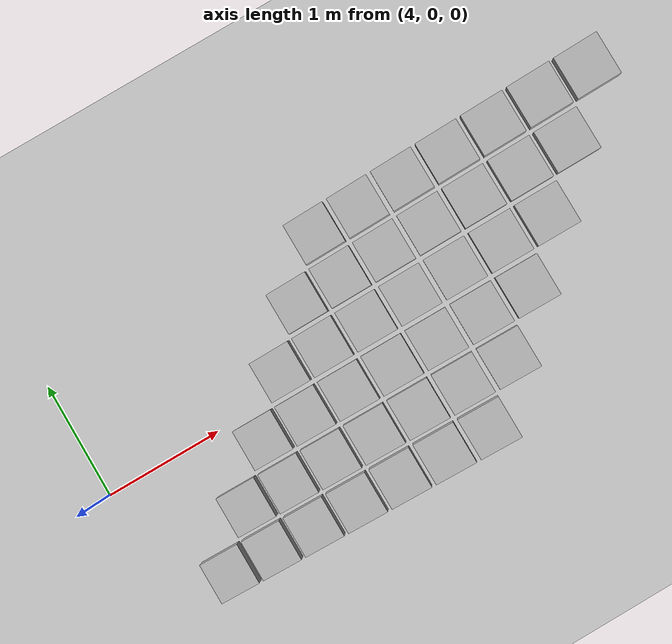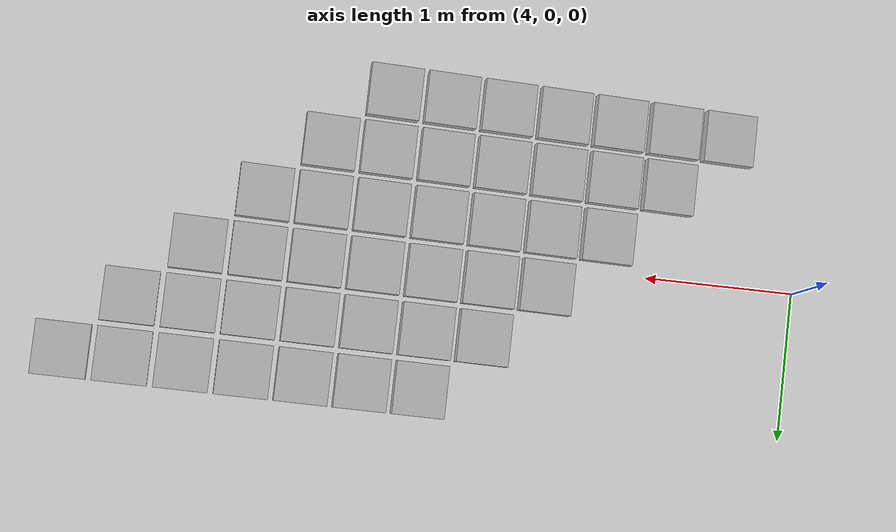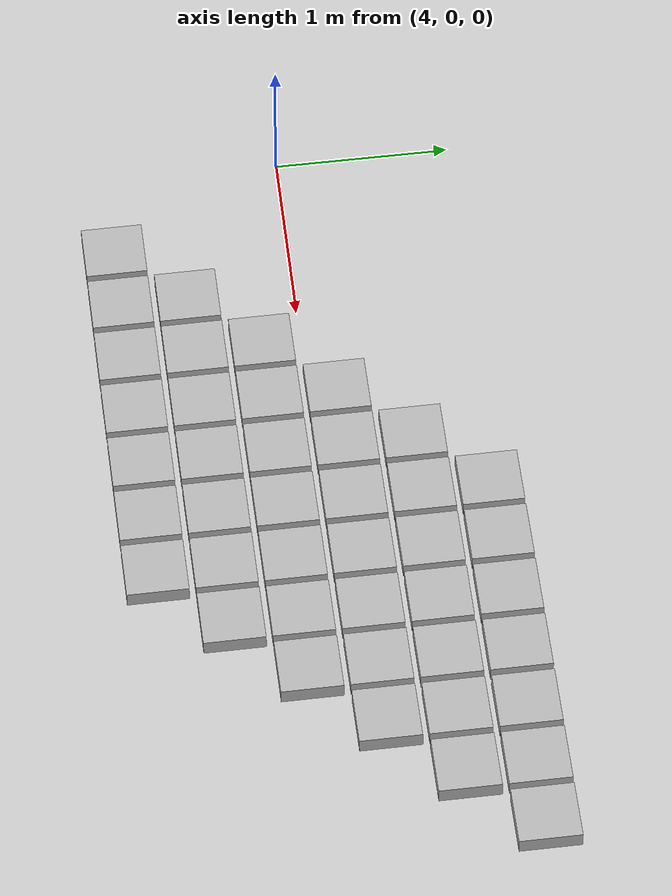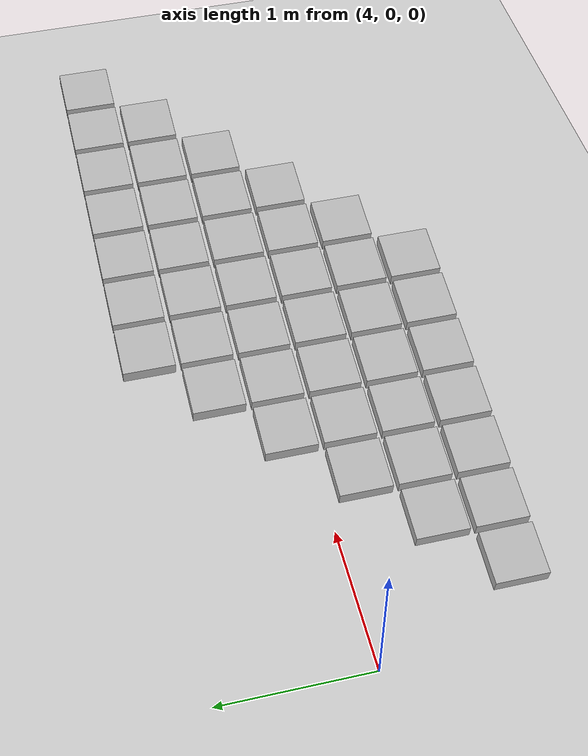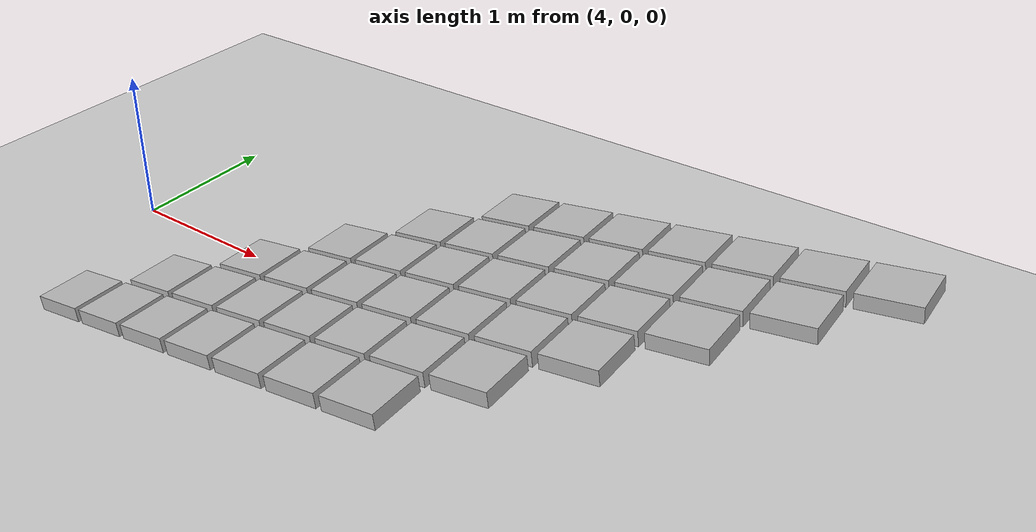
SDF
<sdf version="1.5">
 <world name="trials_task_2">
  <model name="ground_plane">
   <static>1</static>
   <link name="link">
    <collision name="collision">
     <geometry><plane><normal>0 0 1</normal><size>100 100</size></plane></geometry>
     <surface><friction><ode><mu>100</mu><mu2>50</mu2></ode></friction></surface>
    </collision>
    <visual name="visual">
     <cast_shadows>0</cast_shadows>
     <geometry><plane><normal>0 0 1</normal><size>100 100</size></plane></geometry>
     <material>
      <script><uri>file://media/materials/scripts/gazebo.material</uri><name>Gazebo/Grey</name></script>
     </material>
    </visual>
    <velocity_decay><linear>0</linear><angular>0</angular></velocity_decay>
   </link>
  </model>
  <model name="block_cover">
   <pose>2.42937 -1.20093 -0.262679 -0.000259 -0.15805 0.000469</pose>
   <link name="block_0_0::link">
    <inertial>
     <pose>0 0 0.0714375 0 -0 0</pose>
     <mass>5</mass>
     <inertia>
      <ixx>0.0681466</ixx>
      <ixy>0</ixy>
      <iyy>0.0681466</iyy>
      <ixz>0</ixz>
      <iyz>0</iyz>
      <izz>0.124808</izz>
     </inertia>
    </inertial>
    <visual name="visual"><geometry><box><size>0.35 0.35 0.092075</size></box></geometry></visual>
    <collision name="block_collision">
     <geometry><box><size>0.35 0.35 0.092075</size></box></geometry>
     <surface>
      <contact><ode><max_vel>0.1</max_vel><min_depth>0.001</min_depth></ode></contact>
      <friction><ode><mu>1</mu><mu2>1</mu2></ode></friction>
     </surface>
    </collision>
    <velocity_decay><linear>0</linear><angular>0</angular></velocity_decay>
    <pose>2.13044 0.193677 0 0 -0 0</pose>
   </link>
   <link name="block_0_1::link">
    <inertial>
     <pose>0 0 0.0714375 0 -0 0</pose>
     <mass>5</mass>
     <inertia>
      <ixx>0.0681466</ixx>
      <ixy>0</ixy>
      <iyy>0.0681466</iyy>
      <ixz>0</ixz>
      <iyz>0</iyz>
      <izz>0.124808</izz>
     </inertia>
    </inertial>
    <visual name="visual"><geometry><box><size>0.35 0.35 0.092075</size></box></geometry></visual>
    <collision name="block_collision">
     <geometry><box><size>0.35 0.35 0.092075</size></box></geometry>
     <surface>
      <contact><ode><max_vel>0.1</max_vel><min_depth>0.001</min_depth></ode></contact>
      <friction><ode><mu>1</mu><mu2>1</mu2></ode></friction>
     </surface>
    </collision>
    <velocity_decay><linear>0</linear><angular>0</angular></velocity_decay>
    <pose>2.5178 0.58103 0 0 -0 0</pose>
   </link>
   <link name="block_0_2::link">
    <inertial>
     <pose>0 0 0.0714375 0 -0 0</pose>
     <mass>5</mass>
     <inertia>
      <ixx>0.0681466</ixx>
      <ixy>0</ixy>
      <iyy>0.0681466</iyy>
      <ixz>0</ixz>
      <iyz>0</iyz>
      <izz>0.124808</izz>
     </inertia>
    </inertial>
    <visual name="visual"><geometry><box><size>0.35 0.35 0.092075</size></box></geometry></visual>
    <collision name="block_collision">
     <geometry><box><size>0.35 0.35 0.092075</size></box></geometry>
     <surface>
      <contact><ode><max_vel>0.1</max_vel><min_depth>0.001</min_depth></ode></contact>
      <friction><ode><mu>1</mu><mu2>1</mu2></ode></friction>
     </surface>
    </collision>
    <velocity_decay><linear>0</linear><angular>0</angular></velocity_decay>
    <pose>2.90515 0.968384 0 0 -0 0</pose>
   </link>
   <link name="block_0_3::link">
    <inertial>
     <pose>0 0 0.0714375 0 -0 0</pose>
     <mass>5</mass>
     <inertia>
      <ixx>0.0681466</ixx>
      <ixy>0</ixy>
      <iyy>0.0681466</iyy>
      <ixz>0</ixz>
      <iyz>0</iyz>
      <izz>0.124808</izz>
     </inertia>
    </inertial>
    <visual name="visual"><geometry><box><size>0.35 0.35 0.092075</size></box></geometry></visual>
    <collision name="block_collision">
     <geometry><box><size>0.35 0.35 0.092075</size></box></geometry>
     <surface>
      <contact><ode><max_vel>0.1</max_vel><min_depth>0.001</min_depth></ode></contact>
      <friction><ode><mu>1</mu><mu2>1</mu2></ode></friction>
     </surface>
    </collision>
    <velocity_decay><linear>0</linear><angular>0</angular></velocity_decay>
    <pose>3.29251 1.35574 0 0 -0 0</pose>
   </link>
   <link name="block_0_4::link">
    <inertial>
     <pose>0 0 0.0714375 0 -0 0</pose>
     <mass>5</mass>
     <inertia>
      <ixx>0.0681466</ixx>
      <ixy>0</ixy>
      <iyy>0.0681466</iyy>
      <ixz>0</ixz>
      <iyz>0</iyz>
      <izz>0.124808</izz>
     </inertia>
    </inertial>
    <visual name="visual"><geometry><box><size>0.35 0.35 0.092075</size></box></geometry></visual>
    <collision name="block_collision">
     <geometry><box><size>0.35 0.35 0.092075</size></box></geometry>
     <surface>
      <contact><ode><max_vel>0.1</max_vel><min_depth>0.001</min_depth></ode></contact>
      <friction><ode><mu>1</mu><mu2>1</mu2></ode></friction>
     </surface>
    </collision>
    <velocity_decay><linear>0</linear><angular>0</angular></velocity_decay>
    <pose>3.67986 1.74309 0 0 -0 0</pose>
   </link>
   <link name="block_0_5::link">
    <inertial>
     <pose>0 0 0.0714375 0 -0 0</pose>
     <mass>5</mass>
     <inertia>
      <ixx>0.0681466</ixx>
      <ixy>0</ixy>
      <iyy>0.0681466</iyy>
      <ixz>0</ixz>
      <iyz>0</iyz>
      <izz>0.124808</izz>
     </inertia>
    </inertial>
    <visual name="visual"><geometry><box><size>0.35 0.35 0.092075</size></box></geometry></visual>
    <collision name="block_collision">
     <geometry><box><size>0.35 0.35 0.092075</size></box></geometry>
     <surface>
      <contact><ode><max_vel>0.1</max_vel><min_depth>0.001</min_depth></ode></contact>
      <friction><ode><mu>1</mu><mu2>1</mu2></ode></friction>
     </surface>
    </collision>
    <velocity_decay><linear>0</linear><angular>0</angular></velocity_decay>
    <pose>4.06721 2.13044 0 0 -0 0</pose>
   </link>
   <link name="block_1_0::link">
    <inertial>
     <pose>0 0 0.0714375 0 -0 0</pose>
     <mass>5</mass>
     <inertia>
      <ixx>0.0681466</ixx>
      <ixy>0</ixy>
      <iyy>0.0681466</iyy>
      <ixz>0</ixz>
      <iyz>0</iyz>
      <izz>0.124808</izz>
     </inertia>
    </inertial>
    <visual name="visual"><geometry><box><size>0.35 0.35 0.092075</size></box></geometry></visual>
    <collision name="block_collision">
     <geometry><box><size>0.35 0.35 0.092075</size></box></geometry>
     <surface>
      <contact><ode><max_vel>0.1</max_vel><min_depth>0.001</min_depth></ode></contact>
      <friction><ode><mu>1</mu><mu2>1</mu2></ode></friction>
     </surface>
    </collision>
    <velocity_decay><linear>0</linear><angular>0</angular></velocity_decay>
    <pose>2.5178 0.193677 0 0 -0 0</pose>
   </link>
   <link name="block_1_1::link">
    <inertial>
     <pose>0 0 0.0714375 0 -0 0</pose>
     <mass>5</mass>
     <inertia>
      <ixx>0.0681466</ixx>
      <ixy>0</ixy>
      <iyy>0.0681466</iyy>
      <ixz>0</ixz>
      <iyz>0</iyz>
      <izz>0.124808</izz>
     </inertia>
    </inertial>
    <visual name="visual"><geometry><box><size>0.35 0.35 0.092075</size></box></geometry></visual>
    <collision name="block_collision">
     <geometry><box><size>0.35 0.35 0.092075</size></box></geometry>
     <surface>
      <contact><ode><max_vel>0.1</max_vel><min_depth>0.001</min_depth></ode></contact>
      <friction><ode><mu>1</mu><mu2>1</mu2></ode></friction>
     </surface>
    </collision>
    <velocity_decay><linear>0</linear><angular>0</angular></velocity_decay>
    <pose>2.90515 0.58103 0 0 -0 0</pose>
   </link>
   <link name="block_1_2::link">
    <inertial>
     <pose>0 0 0.0714375 0 -0 0</pose>
     <mass>5</mass>
     <inertia>
      <ixx>0.0681466</ixx>
      <ixy>0</ixy>
      <iyy>0.0681466</iyy>
      <ixz>0</ixz>
      <iyz>0</iyz>
      <izz>0.124808</izz>
     </inertia>
    </inertial>
    <visual name="visual"><geometry><box><size>0.35 0.35 0.092075</size></box></geometry></visual>
    <collision name="block_collision">
     <geometry><box><size>0.35 0.35 0.092075</size></box></geometry>
     <surface>
      <contact><ode><max_vel>0.1</max_vel><min_depth>0.001</min_depth></ode></contact>
      <friction><ode><mu>1</mu><mu2>1</mu2></ode></friction>
     </surface>
    </collision>
    <velocity_decay><linear>0</linear><angular>0</angular></velocity_decay>
    <pose>3.29251 0.968384 0 0 -0 0</pose>
   </link>
   <link name="block_1_3::link">
    <inertial>
     <pose>0 0 0.0714375 0 -0 0</pose>
     <mass>5</mass>
     <inertia>
      <ixx>0.0681466</ixx>
      <ixy>0</ixy>
      <iyy>0.0681466</iyy>
      <ixz>0</ixz>
      <iyz>0</iyz>
      <izz>0.124808</izz>
     </inertia>
    </inertial>
    <visual name="visual"><geometry><box><size>0.35 0.35 0.092075</size></box></geometry></visual>
    <collision name="block_collision">
     <geometry><box><size>0.35 0.35 0.092075</size></box></geometry>
     <surface>
      <contact><ode><max_vel>0.1</max_vel><min_depth>0.001</min_depth></ode></contact>
      <friction><ode><mu>1</mu><mu2>1</mu2></ode></friction>
     </surface>
    </collision>
    <velocity_decay><linear>0</linear><angular>0</angular></velocity_decay>
    <pose>3.67986 1.35574 0 0 -0 0</pose>
   </link>
   <link name="block_1_4::link">
    <inertial>
     <pose>0 0 0.0714375 0 -0 0</pose>
     <mass>5</mass>
     <inertia>
      <ixx>0.0681466</ixx>
      <ixy>0</ixy>
      <iyy>0.0681466</iyy>
      <ixz>0</ixz>
      <iyz>0</iyz>
      <izz>0.124808</izz>
     </inertia>
    </inertial>
    <visual name="visual"><geometry><box><size>0.35 0.35 0.092075</size></box></geometry></visual>
    <collision name="block_collision">
     <geometry><box><size>0.35 0.35 0.092075</size></box></geometry>
     <surface>
      <contact><ode><max_vel>0.1</max_vel><min_depth>0.001</min_depth></ode></contact>
      <friction><ode><mu>1</mu><mu2>1</mu2></ode></friction>
     </surface>
    </collision>
    <velocity_decay><linear>0</linear><angular>0</angular></velocity_decay>
    <pose>4.06721 1.74309 0 0 -0 0</pose>
   </link>
   <link name="block_1_5::link">
    <inertial>
     <pose>0 0 0.0714375 0 -0 0</pose>
     <mass>5</mass>
     <inertia>
      <ixx>0.0681466</ixx>
      <ixy>0</ixy>
      <iyy>0.0681466</iyy>
      <ixz>0</ixz>
      <iyz>0</iyz>
      <izz>0.124808</izz>
     </inertia>
    </inertial>
    <visual name="visual"><geometry><box><size>0.35 0.35 0.092075</size></box></geometry></visual>
    <collision name="block_collision">
     <geometry><box><size>0.35 0.35 0.092075</size></box></geometry>
     <surface>
      <contact><ode><max_vel>0.1</max_vel><min_depth>0.001</min_depth></ode></contact>
      <friction><ode><mu>1</mu><mu2>1</mu2></ode></friction>
     </surface>
    </collision>
    <velocity_decay><linear>0</linear><angular>0</angular></velocity_decay>
    <pose>4.45457 2.13044 0 0 -0 0</pose>
   </link>
   <link name="block_2_0::link">
    <inertial>
     <pose>0 0 0.0714375 0 -0 0</pose>
     <mass>5</mass>
     <inertia>
      <ixx>0.0681466</ixx>
      <ixy>0</ixy>
      <iyy>0.0681466</iyy>
      <ixz>0</ixz>
      <iyz>0</iyz>
      <izz>0.124808</izz>
     </inertia>
    </inertial>
    <visual name="visual"><geometry><box><size>0.35 0.35 0.092075</size></box></geometry></visual>
    <collision name="block_collision">
     <geometry><box><size>0.35 0.35 0.092075</size></box></geometry>
     <surface>
      <contact><ode><max_vel>0.1</max_vel><min_depth>0.001</min_depth></ode></contact>
      <friction><ode><mu>1</mu><mu2>1</mu2></ode></friction>
     </surface>
    </collision>
    <velocity_decay><linear>0</linear><angular>0</angular></velocity_decay>
    <pose>2.90515 0.193677 0 0 -0 0</pose>
   </link>
   <link name="block_2_1::link">
    <inertial>
     <pose>0 0 0.0714375 0 -0 0</pose>
     <mass>5</mass>
     <inertia>
      <ixx>0.0681466</ixx>
      <ixy>0</ixy>
      <iyy>0.0681466</iyy>
      <ixz>0</ixz>
      <iyz>0</iyz>
      <izz>0.124808</izz>
     </inertia>
    </inertial>
    <visual name="visual"><geometry><box><size>0.35 0.35 0.092075</size></box></geometry></visual>
    <collision name="block_collision">
     <geometry><box><size>0.35 0.35 0.092075</size></box></geometry>
     <surface>
      <contact><ode><max_vel>0.1</max_vel><min_depth>0.001</min_depth></ode></contact>
      <friction><ode><mu>1</mu><mu2>1</mu2></ode></friction>
     </surface>
    </collision>
    <velocity_decay><linear>0</linear><angular>0</angular></velocity_decay>
    <pose>3.29251 0.58103 0 0 -0 0</pose>
   </link>
   <link name="block_2_2::link">
    <inertial>
     <pose>0 0 0.0714375 0 -0 0</pose>
     <mass>5</mass>
     <inertia>
      <ixx>0.0681466</ixx>
      <ixy>0</ixy>
      <iyy>0.0681466</iyy>
      <ixz>0</ixz>
      <iyz>0</iyz>
      <izz>0.124808</izz>
     </inertia>
    </inertial>
    <visual name="visual"><geometry><box><size>0.35 0.35 0.092075</size></box></geometry></visual>
    <collision name="block_collision">
     <geometry><box><size>0.35 0.35 0.092075</size></box></geometry>
     <surface>
      <contact><ode><max_vel>0.1</max_vel><min_depth>0.001</min_depth></ode></contact>
      <friction><ode><mu>1</mu><mu2>1</mu2></ode></friction>
     </surface>
    </collision>
    <velocity_decay><linear>0</linear><angular>0</angular></velocity_decay>
    <pose>3.67986 0.968384 0 0 -0 0</pose>
   </link>
   <link name="block_2_3::link">
    <inertial>
     <pose>0 0 0.0714375 0 -0 0</pose>
     <mass>5</mass>
     <inertia>
      <ixx>0.0681466</ixx>
      <ixy>0</ixy>
      <iyy>0.0681466</iyy>
      <ixz>0</ixz>
      <iyz>0</iyz>
      <izz>0.124808</izz>
     </inertia>
    </inertial>
    <visual name="visual"><geometry><box><size>0.35 0.35 0.092075</size></box></geometry></visual>
    <collision name="block_collision">
     <geometry><box><size>0.35 0.35 0.092075</size></box></geometry>
     <surface>
      <contact><ode><max_vel>0.1</max_vel><min_depth>0.001</min_depth></ode></contact>
      <friction><ode><mu>1</mu><mu2>1</mu2></ode></friction>
     </surface>
    </collision>
    <velocity_decay><linear>0</linear><angular>0</angular></velocity_decay>
    <pose>4.06721 1.35574 0 0 -0 0</pose>
   </link>
   <link name="block_2_4::link">
    <inertial>
     <pose>0 0 0.0714375 0 -0 0</pose>
     <mass>5</mass>
     <inertia>
      <ixx>0.0681466</ixx>
      <ixy>0</ixy>
      <iyy>0.0681466</iyy>
      <ixz>0</ixz>
      <iyz>0</iyz>
      <izz>0.124808</izz>
     </inertia>
    </inertial>
    <visual name="visual"><geometry><box><size>0.35 0.35 0.092075</size></box></geometry></visual>
    <collision name="block_collision">
     <geometry><box><size>0.35 0.35 0.092075</size></box></geometry>
     <surface>
      <contact><ode><max_vel>0.1</max_vel><min_depth>0.001</min_depth></ode></contact>
      <friction><ode><mu>1</mu><mu2>1</mu2></ode></friction>
     </surface>
    </collision>
    <velocity_decay><linear>0</linear><angular>0</angular></velocity_decay>
    <pose>4.45457 1.74309 0 0 -0 0</pose>
   </link>
   <link name="block_2_5::link">
    <inertial>
     <pose>0 0 0.0714375 0 -0 0</pose>
     <mass>5</mass>
     <inertia>
      <ixx>0.0681466</ixx>
      <ixy>0</ixy>
      <iyy>0.0681466</iyy>
      <ixz>0</ixz>
      <iyz>0</iyz>
      <izz>0.124808</izz>
     </inertia>
    </inertial>
    <visual name="visual"><geometry><box><size>0.35 0.35 0.092075</size></box></geometry></visual>
    <collision name="block_collision">
     <geometry><box><size>0.35 0.35 0.092075</size></box></geometry>
     <surface>
      <contact><ode><max_vel>0.1</max_vel><min_depth>0.001</min_depth></ode></contact>
      <friction><ode><mu>1</mu><mu2>1</mu2></ode></friction>
     </surface>
    </collision>
    <velocity_decay><linear>0</linear><angular>0</angular></velocity_decay>
    <pose>4.84192 2.13044 0 0 -0 0</pose>
   </link>
   <link name="block_3_0::link">
    <inertial>
     <pose>0 0 0.0714375 0 -0 0</pose>
     <mass>5</mass>
     <inertia>
      <ixx>0.0681466</ixx>
      <ixy>0</ixy>
      <iyy>0.0681466</iyy>
      <ixz>0</ixz>
      <iyz>0</iyz>
      <izz>0.124808</izz>
     </inertia>
    </inertial>
    <visual name="visual"><geometry><box><size>0.35 0.35 0.092075</size></box></geometry></visual>
    <collision name="block_collision">
     <geometry><box><size>0.35 0.35 0.092075</size></box></geometry>
     <surface>
      <contact><ode><max_vel>0.1</max_vel><min_depth>0.001</min_depth></ode></contact>
      <friction><ode><mu>1</mu><mu2>1</mu2></ode></friction>
     </surface>
    </collision>
    <velocity_decay><linear>0</linear><angular>0</angular></velocity_decay>
    <pose>3.29251 0.193677 0 0 -0 0</pose>
   </link>
   <link name="block_3_1::link">
    <inertial>
     <pose>0 0 0.0714375 0 -0 0</pose>
     <mass>5</mass>
     <inertia>
      <ixx>0.0681466</ixx>
      <ixy>0</ixy>
      <iyy>0.0681466</iyy>
      <ixz>0</ixz>
      <iyz>0</iyz>
      <izz>0.124808</izz>
     </inertia>
    </inertial>
    <visual name="visual"><geometry><box><size>0.35 0.35 0.092075</size></box></geometry></visual>
    <collision name="block_collision">
     <geometry><box><size>0.35 0.35 0.092075</size></box></geometry>
     <surface>
      <contact><ode><max_vel>0.1</max_vel><min_depth>0.001</min_depth></ode></contact>
      <friction><ode><mu>1</mu><mu2>1</mu2></ode></friction>
     </surface>
    </collision>
    <velocity_decay><linear>0</linear><angular>0</angular></velocity_decay>
    <pose>3.67986 0.58103 0 0 -0 0</pose>
   </link>
   <link name="block_3_2::link">
    <inertial>
     <pose>0 0 0.0714375 0 -0 0</pose>
     <mass>5</mass>
     <inertia>
      <ixx>0.0681466</ixx>
      <ixy>0</ixy>
      <iyy>0.0681466</iyy>
      <ixz>0</ixz>
      <iyz>0</iyz>
      <izz>0.124808</izz>
     </inertia>
    </inertial>
    <visual name="visual"><geometry><box><size>0.35 0.35 0.092075</size></box></geometry></visual>
    <collision name="block_collision">
     <geometry><box><size>0.35 0.35 0.092075</size></box></geometry>
     <surface>
      <contact><ode><max_vel>0.1</max_vel><min_depth>0.001</min_depth></ode></contact>
      <friction><ode><mu>1</mu><mu2>1</mu2></ode></friction>
     </surface>
    </collision>
    <velocity_decay><linear>0</linear><angular>0</angular></velocity_decay>
    <pose>4.06721 0.968384 0 0 -0 0</pose>
   </link>
   <link name="block_3_3::link">
    <inertial>
     <pose>0 0 0.0714375 0 -0 0</pose>
     <mass>5</mass>
     <inertia>
      <ixx>0.0681466</ixx>
      <ixy>0</ixy>
      <iyy>0.0681466</iyy>
      <ixz>0</ixz>
      <iyz>0</iyz>
      <izz>0.124808</izz>
     </inertia>
    </inertial>
    <visual name="visual"><geometry><box><size>0.35 0.35 0.092075</size></box></geometry></visual>
    <collision name="block_collision">
     <geometry><box><size>0.35 0.35 0.092075</size></box></geometry>
     <surface>
      <contact><ode><max_vel>0.1</max_vel><min_depth>0.001</min_depth></ode></contact>
      <friction><ode><mu>1</mu><mu2>1</mu2></ode></friction>
     </surface>
    </collision>
    <velocity_decay><linear>0</linear><angular>0</angular></velocity_decay>
    <pose>4.45457 1.35574 0 0 -0 0</pose>
   </link>
   <link name="block_3_4::link">
    <inertial>
     <pose>0 0 0.0714375 0 -0 0</pose>
     <mass>5</mass>
     <inertia>
      <ixx>0.0681466</ixx>
      <ixy>0</ixy>
      <iyy>0.0681466</iyy>
      <ixz>0</ixz>
      <iyz>0</iyz>
      <izz>0.124808</izz>
     </inertia>
    </inertial>
    <visual name="visual"><geometry><box><size>0.35 0.35 0.092075</size></box></geometry></visual>
    <collision name="block_collision">
     <geometry><box><size>0.35 0.35 0.092075</size></box></geometry>
     <surface>
      <contact><ode><max_vel>0.1</max_vel><min_depth>0.001</min_depth></ode></contact>
      <friction><ode><mu>1</mu><mu2>1</mu2></ode></friction>
     </surface>
    </collision>
    <velocity_decay><linear>0</linear><angular>0</angular></velocity_decay>
    <pose>4.84192 1.74309 0 0 -0 0</pose>
   </link>
   <link name="block_3_5::link">
    <inertial>
     <pose>0 0 0.0714375 0 -0 0</pose>
     <mass>5</mass>
     <inertia>
      <ixx>0.0681466</ixx>
      <ixy>0</ixy>
      <iyy>0.0681466</iyy>
      <ixz>0</ixz>
      <iyz>0</iyz>
      <izz>0.124808</izz>
     </inertia>
    </inertial>
    <visual name="visual"><geometry><box><size>0.35 0.35 0.092075</size></box></geometry></visual>
    <collision name="block_collision">
     <geometry><box><size>0.35 0.35 0.092075</size></box></geometry>
     <surface>
      <contact><ode><max_vel>0.1</max_vel><min_depth>0.001</min_depth></ode></contact>
      <friction><ode><mu>1</mu><mu2>1</mu2></ode></friction>
     </surface>
    </collision>
    <velocity_decay><linear>0</linear><angular>0</angular></velocity_decay>
    <pose>5.22927 2.13044 0 0 -0 0</pose>
   </link>
   <link name="block_4_0::link">
    <inertial>
     <pose>0 0 0.0714375 0 -0 0</pose>
     <mass>5</mass>
     <inertia>
      <ixx>0.0681466</ixx>
      <ixy>0</ixy>
      <iyy>0.0681466</iyy>
      <ixz>0</ixz>
      <iyz>0</iyz>
      <izz>0.124808</izz>
     </inertia>
    </inertial>
    <visual name="visual"><geometry><box><size>0.35 0.35 0.092075</size></box></geometry></visual>
    <collision name="block_collision">
     <geometry><box><size>0.35 0.35 0.092075</size></box></geometry>
     <surface>
      <contact><ode><max_vel>0.1</max_vel><min_depth>0.001</min_depth></ode></contact>
      <friction><ode><mu>1</mu><mu2>1</mu2></ode></friction>
     </surface>
    </collision>
    <velocity_decay><linear>0</linear><angular>0</angular></velocity_decay>
    <pose>3.67986 0.193677 0 0 -0 0</pose>
   </link>
   <link name="block_4_1::link">
    <inertial>
     <pose>0 0 0.0714375 0 -0 0</pose>
     <mass>5</mass>
     <inertia>
      <ixx>0.0681466</ixx>
      <ixy>0</ixy>
      <iyy>0.0681466</iyy>
      <ixz>0</ixz>
      <iyz>0</iyz>
      <izz>0.124808</izz>
     </inertia>
    </inertial>
    <visual name="visual"><geometry><box><size>0.35 0.35 0.092075</size></box></geometry></visual>
    <collision name="block_collision">
     <geometry><box><size>0.35 0.35 0.092075</size></box></geometry>
     <surface>
      <contact><ode><max_vel>0.1</max_vel><min_depth>0.001</min_depth></ode></contact>
      <friction><ode><mu>1</mu><mu2>1</mu2></ode></friction>
     </surface>
    </collision>
    <velocity_decay><linear>0</linear><angular>0</angular></velocity_decay>
    <pose>4.06721 0.58103 0 0 -0 0</pose>
   </link>
   <link name="block_4_2::link">
    <inertial>
     <pose>0 0 0.0714375 0 -0 0</pose>
     <mass>5</mass>
     <inertia>
      <ixx>0.0681466</ixx>
      <ixy>0</ixy>
      <iyy>0.0681466</iyy>
      <ixz>0</ixz>
      <iyz>0</iyz>
      <izz>0.124808</izz>
     </inertia>
    </inertial>
    <visual name="visual"><geometry><box><size>0.35 0.35 0.092075</size></box></geometry></visual>
    <collision name="block_collision">
     <geometry><box><size>0.35 0.35 0.092075</size></box></geometry>
     <surface>
      <contact><ode><max_vel>0.1</max_vel><min_depth>0.001</min_depth></ode></contact>
      <friction><ode><mu>1</mu><mu2>1</mu2></ode></friction>
     </surface>
    </collision>
    <velocity_decay><linear>0</linear><angular>0</angular></velocity_decay>
    <pose>4.45457 0.968384 0 0 -0 0</pose>
   </link>
   <link name="block_4_3::link">
    <inertial>
     <pose>0 0 0.0714375 0 -0 0</pose>
     <mass>5</mass>
     <inertia>
      <ixx>0.0681466</ixx>
      <ixy>0</ixy>
      <iyy>0.0681466</iyy>
      <ixz>0</ixz>
      <iyz>0</iyz>
      <izz>0.124808</izz>
     </inertia>
    </inertial>
    <visual name="visual"><geometry><box><size>0.35 0.35 0.092075</size></box></geometry></visual>
    <collision name="block_collision">
     <geometry><box><size>0.35 0.35 0.092075</size></box></geometry>
     <surface>
      <contact><ode><max_vel>0.1</max_vel><min_depth>0.001</min_depth></ode></contact>
      <friction><ode><mu>1</mu><mu2>1</mu2></ode></friction>
     </surface>
    </collision>
    <velocity_decay><linear>0</linear><angular>0</angular></velocity_decay>
    <pose>4.84192 1.35574 0 0 -0 0</pose>
   </link>
   <link name="block_4_4::link">
    <inertial>
     <pose>0 0 0.0714375 0 -0 0</pose>
     <mass>5</mass>
     <inertia>
      <ixx>0.0681466</ixx>
      <ixy>0</ixy>
      <iyy>0.0681466</iyy>
      <ixz>0</ixz>
      <iyz>0</iyz>
      <izz>0.124808</izz>
     </inertia>
    </inertial>
    <visual name="visual"><geometry><box><size>0.35 0.35 0.092075</size></box></geometry></visual>
    <collision name="block_collision">
     <geometry><box><size>0.35 0.35 0.092075</size></box></geometry>
     <surface>
      <contact><ode><max_vel>0.1</max_vel><min_depth>0.001</min_depth></ode></contact>
      <friction><ode><mu>1</mu><mu2>1</mu2></ode></friction>
     </surface>
    </collision>
    <velocity_decay><linear>0</linear><angular>0</angular></velocity_decay>
    <pose>5.22927 1.74309 0 0 -0 0</pose>
   </link>
   <link name="block_4_5::link">
    <inertial>
     <pose>0 0 0.0714375 0 -0 0</pose>
     <mass>5</mass>
     <inertia>
      <ixx>0.0681466</ixx>
      <ixy>0</ixy>
      <iyy>0.0681466</iyy>
      <ixz>0</ixz>
      <iyz>0</iyz>
      <izz>0.124808</izz>
     </inertia>
    </inertial>
    <visual name="visual"><geometry><box><size>0.35 0.35 0.092075</size></box></geometry></visual>
    <collision name="block_collision">
     <geometry><box><size>0.35 0.35 0.092075</size></box></geometry>
     <surface>
      <contact><ode><max_vel>0.1</max_vel><min_depth>0.001</min_depth></ode></contact>
      <friction><ode><mu>1</mu><mu2>1</mu2></ode></friction>
     </surface>
    </collision>
    <velocity_decay><linear>0</linear><angular>0</angular></velocity_decay>
    <pose>5.61663 2.13044 0 0 -0 0</pose>
   </link>
   <link name="block_5_0::link">
    <inertial>
     <pose>0 0 0.0714375 0 -0 0</pose>
     <mass>5</mass>
     <inertia>
      <ixx>0.0681466</ixx>
      <ixy>0</ixy>
      <iyy>0.0681466</iyy>
      <ixz>0</ixz>
      <iyz>0</iyz>
      <izz>0.124808</izz>
     </inertia>
    </inertial>
    <visual name="visual"><geometry><box><size>0.35 0.35 0.092075</size></box></geometry></visual>
    <collision name="block_collision">
     <geometry><box><size>0.35 0.35 0.092075</size></box></geometry>
     <surface>
      <contact><ode><max_vel>0.1</max_vel><min_depth>0.001</min_depth></ode></contact>
      <friction><ode><mu>1</mu><mu2>1</mu2></ode></friction>
     </surface>
    </collision>
    <velocity_decay><linear>0</linear><angular>0</angular></velocity_decay>
    <pose>4.06721 0.193677 0 0 -0 0</pose>
   </link>
   <link name="block_5_1::link">
    <inertial>
     <pose>0 0 0.0714375 0 -0 0</pose>
     <mass>5</mass>
     <inertia>
      <ixx>0.0681466</ixx>
      <ixy>0</ixy>
      <iyy>0.0681466</iyy>
      <ixz>0</ixz>
      <iyz>0</iyz>
      <izz>0.124808</izz>
     </inertia>
    </inertial>
    <visual name="visual"><geometry><box><size>0.35 0.35 0.092075</size></box></geometry></visual>
    <collision name="block_collision">
     <geometry><box><size>0.35 0.35 0.092075</size></box></geometry>
     <surface>
      <contact><ode><max_vel>0.1</max_vel><min_depth>0.001</min_depth></ode></contact>
      <friction><ode><mu>1</mu><mu2>1</mu2></ode></friction>
     </surface>
    </collision>
    <velocity_decay><linear>0</linear><angular>0</angular></velocity_decay>
    <pose>4.45457 0.58103 0 0 -0 0</pose>
   </link>
   <link name="block_5_2::link">
    <inertial>
     <pose>0 0 0.0714375 0 -0 0</pose>
     <mass>5</mass>
     <inertia>
      <ixx>0.0681466</ixx>
      <ixy>0</ixy>
      <iyy>0.0681466</iyy>
      <ixz>0</ixz>
      <iyz>0</iyz>
      <izz>0.124808</izz>
     </inertia>
    </inertial>
    <visual name="visual"><geometry><box><size>0.35 0.35 0.092075</size></box></geometry></visual>
    <collision name="block_collision">
     <geometry><box><size>0.35 0.35 0.092075</size></box></geometry>
     <surface>
      <contact><ode><max_vel>0.1</max_vel><min_depth>0.001</min_depth></ode></contact>
      <friction><ode><mu>1</mu><mu2>1</mu2></ode></friction>
     </surface>
    </collision>
    <velocity_decay><linear>0</linear><angular>0</angular></velocity_decay>
    <pose>4.84192 0.968384 0 0 -0 0</pose>
   </link>
   <link name="block_5_3::link">
    <inertial>
     <pose>0 0 0.0714375 0 -0 0</pose>
     <mass>5</mass>
     <inertia>
      <ixx>0.0681466</ixx>
      <ixy>0</ixy>
      <iyy>0.0681466</iyy>
      <ixz>0</ixz>
      <iyz>0</iyz>
      <izz>0.124808</izz>
     </inertia>
    </inertial>
    <visual name="visual"><geometry><box><size>0.35 0.35 0.092075</size></box></geometry></visual>
    <collision name="block_collision">
     <geometry><box><size>0.35 0.35 0.092075</size></box></geometry>
     <surface>
      <contact><ode><max_vel>0.1</max_vel><min_depth>0.001</min_depth></ode></contact>
      <friction><ode><mu>1</mu><mu2>1</mu2></ode></friction>
     </surface>
    </collision>
    <velocity_decay><linear>0</linear><angular>0</angular></velocity_decay>
    <pose>5.22927 1.35574 0 0 -0 0</pose>
   </link>
   <link name="block_5_4::link">
    <inertial>
     <pose>0 0 0.0714375 0 -0 0</pose>
     <mass>5</mass>
     <inertia>
      <ixx>0.0681466</ixx>
      <ixy>0</ixy>
      <iyy>0.0681466</iyy>
      <ixz>0</ixz>
      <iyz>0</iyz>
      <izz>0.124808</izz>
     </inertia>
    </inertial>
    <visual name="visual"><geometry><box><size>0.35 0.35 0.092075</size></box></geometry></visual>
    <collision name="block_collision">
     <geometry><box><size>0.35 0.35 0.092075</size></box></geometry>
     <surface>
      <contact><ode><max_vel>0.1</max_vel><min_depth>0.001</min_depth></ode></contact>
      <friction><ode><mu>1</mu><mu2>1</mu2></ode></friction>
     </surface>
    </collision>
    <velocity_decay><linear>0</linear><angular>0</angular></velocity_decay>
    <pose>5.61663 1.74309 0 0 -0 0</pose>
   </link>
   <link name="block_5_5::link">
    <inertial>
     <pose>0 0 0.0714375 0 -0 0</pose>
     <mass>5</mass>
     <inertia>
      <ixx>0.0681466</ixx>
      <ixy>0</ixy>
      <iyy>0.0681466</iyy>
      <ixz>0</ixz>
      <iyz>0</iyz>
      <izz>0.124808</izz>
     </inertia>
    </inertial>
    <visual name="visual"><geometry><box><size>0.35 0.35 0.092075</size></box></geometry></visual>
    <collision name="block_collision">
     <geometry><box><size>0.35 0.35 0.092075</size></box></geometry>
     <surface>
      <contact><ode><max_vel>0.1</max_vel><min_depth>0.001</min_depth></ode></contact>
      <friction><ode><mu>1</mu><mu2>1</mu2></ode></friction>
     </surface>
    </collision>
    <velocity_decay><linear>0</linear><angular>0</angular></velocity_decay>
    <pose>6.00398 2.13044 0 0 -0 0</pose>
   </link>
   <link name="block_6_0::link">
    <inertial>
     <pose>0 0 0.0714375 0 -0 0</pose>
     <mass>5</mass>
     <inertia>
      <ixx>0.0681466</ixx>
      <ixy>0</ixy>
      <iyy>0.0681466</iyy>
      <ixz>0</ixz>
      <iyz>0</iyz>
      <izz>0.124808</izz>
     </inertia>
    </inertial>
    <visual name="visual"><geometry><box><size>0.35 0.35 0.092075</size></box></geometry></visual>
    <collision name="block_collision">
     <geometry><box><size>0.35 0.35 0.092075</size></box></geometry>
     <surface>
      <contact><ode><max_vel>0.1</max_vel><min_depth>0.001</min_depth></ode></contact>
      <friction><ode><mu>1</mu><mu2>1</mu2></ode></friction>
     </surface>
    </collision>
    <velocity_decay><linear>0</linear><angular>0</angular></velocity_decay>
    <pose>4.45457 0.193677 0 0 -0 0</pose>
   </link>
   <link name="block_6_1::link">
    <inertial>
     <pose>0 0 0.0714375 0 -0 0</pose>
     <mass>5</mass>
     <inertia>
      <ixx>0.0681466</ixx>
      <ixy>0</ixy>
      <iyy>0.0681466</iyy>
      <ixz>0</ixz>
      <iyz>0</iyz>
      <izz>0.124808</izz>
     </inertia>
    </inertial>
    <visual name="visual"><geometry><box><size>0.35 0.35 0.092075</size></box></geometry></visual>
    <collision name="block_collision">
     <geometry><box><size>0.35 0.35 0.092075</size></box></geometry>
     <surface>
      <contact><ode><max_vel>0.1</max_vel><min_depth>0.001</min_depth></ode></contact>
      <friction><ode><mu>1</mu><mu2>1</mu2></ode></friction>
     </surface>
    </collision>
    <velocity_decay><linear>0</linear><angular>0</angular></velocity_decay>
    <pose>4.84192 0.58103 0 0 -0 0</pose>
   </link>
   <link name="block_6_2::link">
    <inertial>
     <pose>0 0 0.0714375 0 -0 0</pose>
     <mass>5</mass>
     <inertia>
      <ixx>0.0681466</ixx>
      <ixy>0</ixy>
      <iyy>0.0681466</iyy>
      <ixz>0</ixz>
      <iyz>0</iyz>
      <izz>0.124808</izz>
     </inertia>
    </inertial>
    <visual name="visual"><geometry><box><size>0.35 0.35 0.092075</size></box></geometry></visual>
    <collision name="block_collision">
     <geometry><box><size>0.35 0.35 0.092075</size></box></geometry>
     <surface>
      <contact><ode><max_vel>0.1</max_vel><min_depth>0.001</min_depth></ode></contact>
      <friction><ode><mu>1</mu><mu2>1</mu2></ode></friction>
     </surface>
    </collision>
    <velocity_decay><linear>0</linear><angular>0</angular></velocity_decay>
    <pose>5.22927 0.968384 0 0 -0 0</pose>
   </link>
   <link name="block_6_3::link">
    <inertial>
     <pose>0 0 0.0714375 0 -0 0</pose>
     <mass>5</mass>
     <inertia>
      <ixx>0.0681466</ixx>
      <ixy>0</ixy>
      <iyy>0.0681466</iyy>
      <ixz>0</ixz>
      <iyz>0</iyz>
      <izz>0.124808</izz>
     </inertia>
    </inertial>
    <visual name="visual"><geometry><box><size>0.35 0.35 0.092075</size></box></geometry></visual>
    <collision name="block_collision">
     <geometry><box><size>0.35 0.35 0.092075</size></box></geometry>
     <surface>
      <contact><ode><max_vel>0.1</max_vel><min_depth>0.001</min_depth></ode></contact>
      <friction><ode><mu>1</mu><mu2>1</mu2></ode></friction>
     </surface>
    </collision>
    <velocity_decay><linear>0</linear><angular>0</angular></velocity_decay>
    <pose>5.61663 1.35574 0 0 -0 0</pose>
   </link>
   <link name="block_6_4::link">
    <inertial>
     <pose>0 0 0.0714375 0 -0 0</pose>
     <mass>5</mass>
     <inertia>
      <ixx>0.0681466</ixx>
      <ixy>0</ixy>
      <iyy>0.0681466</iyy>
      <ixz>0</ixz>
      <iyz>0</iyz>
      <izz>0.124808</izz>
     </inertia>
    </inertial>
    <visual name="visual"><geometry><box><size>0.35 0.35 0.092075</size></box></geometry></visual>
    <collision name="block_collision">
     <geometry><box><size>0.35 0.35 0.092075</size></box></geometry>
     <surface>
      <contact><ode><max_vel>0.1</max_vel><min_depth>0.001</min_depth></ode></contact>
      <friction><ode><mu>1</mu><mu2>1</mu2></ode></friction>
     </surface>
    </collision>
    <velocity_decay><linear>0</linear><angular>0</angular></velocity_decay>
    <pose>6.00398 1.74309 0 0 -0 0</pose>
   </link>
   <link name="block_6_5::link">
    <inertial>
     <pose>0 0 0.0714375 0 -0 0</pose>
     <mass>5</mass>
     <inertia>
      <ixx>0.0681466</ixx>
      <ixy>0</ixy>
      <iyy>0.0681466</iyy>
      <ixz>0</ixz>
      <iyz>0</iyz>
      <izz>0.124808</izz>
     </inertia>
    </inertial>
    <visual name="visual"><geometry><box><size>0.35 0.35 0.092075</size></box></geometry></visual>
    <collision name="block_collision">
     <geometry><box><size>0.35 0.35 0.092075</size></box></geometry>
     <surface>
      <contact><ode><max_vel>0.1</max_vel><min_depth>0.001</min_depth></ode></contact>
      <friction><ode><mu>1</mu><mu2>1</mu2></ode></friction>
     </surface>
    </collision>
    <velocity_decay><linear>0</linear><angular>0</angular></velocity_decay>
    <pose>6.39133 2.13044 0 0 -0 0</pose>
   </link>
   <static>0</static>
  </model>
 </world>
</sdf>
